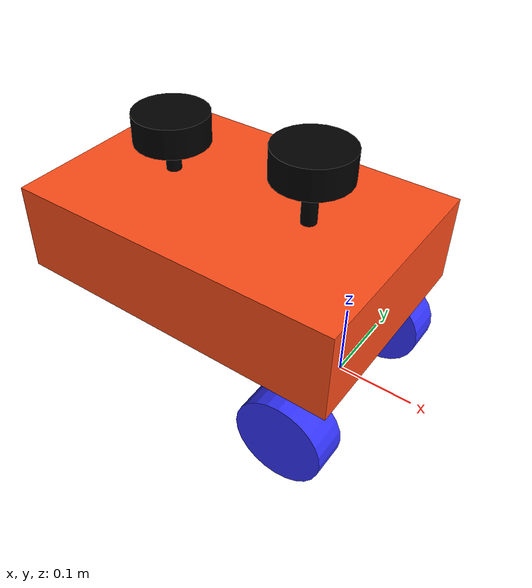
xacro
<?xml version="1.0"?>
<robot xmlns:xacro="http://www.ros.org/wiki/xacro"  name="robot">

    <xacro:arg name="use_ros2_control" default="true"/>
    <xacro:arg name="sim_mode" default="false"/>

    <xacro:include filename="robot_core1.xacro" />

    <xacro:if value="$(arg use_ros2_control)">
        <xacro:include filename="ros2_control.xacro" />
    </xacro:if>
    <xacro:unless value="$(arg use_ros2_control)">
        <xacro:include filename="gazebo_control.xacro" />
    </xacro:unless>
    <xacro:include filename="lidar.xacro" />
    <xacro:include filename="gps.xacro" />
    <xacro:include filename="imu.xacro" />

</robot>

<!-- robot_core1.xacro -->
<robot xmlns:xacro="http://www.ros.org/wiki/xacro" >

    <xacro:include filename="inertial_macros.xacro"/>

    <xacro:property name="chassis_length" value="0.449"/>
    <xacro:property name="chassis_width" value="0.299"/>
    <xacro:property name="chassis_height" value="0.120"/>
    <xacro:property name="chassis_mass" value="5.0"/>
    <xacro:property name="wheel_radius" value="0.0585"/>
    <xacro:property name="wheel_thickness" value="0.0477"/>
    <xacro:property name="wheel_mass" value="0.05"/>
    <xacro:property name="wheel_offset_x" value="0.390"/>
    <xacro:property name="wheel_offset_y" value="0.125"/>
    <xacro:property name="wheel_offset_z" value="-0.085"/>
    <xacro:property name="caster_wheel_radius" value="0.02"/>
    <xacro:property name="caster_wheel_mass" value="0.1"/>
    <xacro:property name="caster_wheel_offset_x" value="0.05"/>
    <xacro:property name="caster_wheel_offset_z" value="${wheel_offset_z - wheel_radius + caster_wheel_radius}"/>

    <material name="white">
        <color rgba="1 1 1 1" />
    </material>

    <material name="orange">
        <color rgba="1 0.3 0.1 1"/>
    </material>

    <material name="blue">
        <color rgba="0.2 0.2 1 1"/>
    </material>

    <material name="black">
        <color rgba="0 0 0 1"/>
    </material>

    <material name="red">
        <color rgba="1 0 0 1"/>
    </material>

    <!-- BASE FOOTPRINT -->

    <!-- BASE_LINK -->

    <!-- CHASSIS LINK -->
    <!-- BASE LINK -->

    <link name="base_link">

    </link>

    <!-- BASE_FOOTPRINT LINK -->

    <joint name="base_footprint_joint" type="fixed">
        <parent link="base_link"/>
        <child link="base_footprint"/>
        <origin xyz="0 0 0" rpy="0 0 0"/>
    </joint>

    <link name="base_footprint">
    </link>

    <joint name="chassis_joint" type="fixed">
        <parent link="base_link"/>
        <child link="chassis"/>
        <origin xyz="${-wheel_offset_x} 0 ${-wheel_offset_z}"/>
    </joint>

    <link name="chassis">
        <visual>
            <origin xyz="${chassis_length/2} 0 ${chassis_height/2}"/>
            <geometry>
                <box size="${chassis_length} ${chassis_width} ${chassis_height}"/>
            </geometry>
            <material name="orange"/>
        </visual>
        <collision>
            <origin xyz="${chassis_length/2} 0 ${chassis_height/2}"/>
            <geometry>
                <box size="${chassis_length} ${chassis_width} ${chassis_height}"/>
            </geometry>
        </collision>
        <xacro:inertial_box mass="0.5" x="${chassis_length}" y="${chassis_width}" z="${chassis_height}">
            <origin xyz="${chassis_length/2} 0 ${chassis_height/2}" rpy="0 0 0"/>
        </xacro:inertial_box>
    </link>

    <gazebo reference="chassis">
        <material>Gazebo/Orange</material>
    </gazebo>

    <!-- LEFT WHEEL LINK -->

    <joint name="left_wheel_joint" type="continuous">
        <parent link="base_link"/>
        <child link="left_wheel"/>
        <origin xyz="0 ${wheel_offset_y} 0" rpy="-${pi/2} 0 0" />
        <axis xyz="0 0 1"/>
    </joint>

    <link name="left_wheel">
        <visual>
            <geometry>
                <cylinder radius="${wheel_radius}" length="${wheel_thickness}"/>
            </geometry>
            <material name="blue"/>
        </visual>
        <collision>
            <geometry>
                <sphere radius="${wheel_radius}"/>
            </geometry>
        </collision>
        <xacro:inertial_cylinder mass="${wheel_mass}" length="${wheel_thickness}" radius="${wheel_radius}">
            <origin xyz="0 0 0" rpy="0 0 0"/>
        </xacro:inertial_cylinder>
    </link>

    <gazebo reference="left_wheel">
        <material>Gazebo/Blue</material>
    </gazebo>

    <!-- RIGHT WHEEL LINK -->

    <joint name="right_wheel_joint" type="continuous">
        <parent link="base_link"/>
        <child link="right_wheel"/>
        <origin xyz="0 ${-wheel_offset_y} 0" rpy="${pi/2} 0 0" />
        <axis xyz="0 0 -1"/>
    </joint>

    <link name="right_wheel">
        <visual>
            <geometry>
                <cylinder radius="${wheel_radius}" length="${wheel_thickness}"/>
            </geometry>
            <material name="blue"/>
        </visual>
        <collision>
            <geometry>
                <sphere radius="${wheel_radius}"/>
            </geometry>
        </collision>
        <xacro:inertial_cylinder mass="${wheel_mass}" length="${wheel_thickness}" radius="${wheel_radius}">
            <origin xyz="0 0 0" rpy="0 0 0"/>
        </xacro:inertial_cylinder>
    </link>

    <gazebo reference="right_wheel">
        <material>Gazebo/Blue</material>
    </gazebo>

    <!-- CASTER WHEEL LINK -->

    <joint name="caster_wheel_joint" type="fixed">
        <parent link="chassis"/>
        <child link="caster_wheel"/>
        <origin xyz="${caster_wheel_offset_x} 0 ${caster_wheel_offset_z}"/>
    </joint>

    <link name="caster_wheel">
        <visual>
            <geometry>
                <sphere radius="${caster_wheel_radius}"/>
            </geometry>
            <material name="white"/>
        </visual>
        <collision>
            <geometry>
                <sphere radius="${caster_wheel_radius}"/>
            </geometry>
        </collision>
        <xacro:inertial_sphere mass="${caster_wheel_mass}" radius="${caster_wheel_radius}">
            <origin xyz="0 0 0" rpy="0 0 0"/>
        </xacro:inertial_sphere>
    </link>

    <gazebo reference="caster_wheel">
        <material>Gazebo/White</material>
        <mu1 value="0.001"/>
        <mu2 value="0.001"/>
    </gazebo>

</robot>

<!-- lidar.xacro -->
<robot xmlns:xacro="http://www.ros.org/wiki/xacro" >

    <joint name="laser_joint" type="fixed">
        <parent link="chassis"/>
        <child link="laser_frame"/>
        <origin xyz="0.326 0 0.200" rpy="0 0 0"/>
    </joint>

    <link name="laser_frame">
        <visual>
            <geometry>
                <cylinder radius="0.05" length="0.04"/>
            </geometry>
            <material name="black"/>
        </visual>
        <visual>
            <origin xyz="0 0 -0.05"/>
            <geometry>
                <cylinder radius="0.01" length="0.1"/>
            </geometry>
            <material name="black"/>
        </visual>
        <collision>
            <geometry>
                <cylinder radius="0.05" length="0.04"/>
            </geometry>
        </collision>
        <xacro:inertial_cylinder mass="0.1" length="0.04" radius="0.05">
            <origin xyz="0 0 0" rpy="0 0 0"/>
        </xacro:inertial_cylinder>
    </link>

    <gazebo reference="laser_frame">
        <material>Gazebo/Black</material>

        <sensor name="laser" type="ray">
            <pose> 0 0 0 0 0 0 </pose>
            <visualize>false</visualize>
            <update_rate>10</update_rate>
            <ray>
                <scan>
                    <horizontal>
                        <samples>360</samples>
                        <min_angle>-3.14</min_angle>
                        <max_angle>3.14</max_angle>
                    </horizontal>
                </scan>
                <range>
                    <min>0.3</min>
                    <max>12</max>
                </range>
            </ray>
            <plugin name="laser_controller" filename="libgazebo_ros_ray_sensor.so">
                <ros>
                    <argument>~/out:=scan</argument>
                </ros>
                <output_type>sensor_msgs/LaserScan</output_type>
                <frame_name>laser_frame</frame_name>
            </plugin>
        </sensor>
    </gazebo>

</robot>

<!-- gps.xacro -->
<robot xmlns:xacro="http://www.ros.org/wiki/xacro" >

    <joint name="gps_joint" type="fixed">
        <parent link="chassis"/>
        <child link="gps_frame"/>
        <origin xyz="0.122 0 0.180" rpy="0 0 0"/>
    </joint>

    <link name="gps_frame">
        <visual>
            <geometry>
                <cylinder radius="0.05" length="0.04"/>
            </geometry>
            <material name="black"/>
        </visual>
        <visual>
            <origin xyz="0 0 -0.05"/>
            <geometry>
                <cylinder radius="0.01" length="0.1"/>
            </geometry>
            <material name="black"/>
        </visual>
        <collision>
            <geometry>
                <cylinder radius="0.05" length="0.04"/>
            </geometry>
        </collision>
        <xacro:inertial_cylinder mass="0.1" length="0.04" radius="0.05">
            <origin xyz="0 0 0" rpy="0 0 0"/>
        </xacro:inertial_cylinder>
    </link>

    <gazebo reference="gps_frame">
        <material>Gazebo/Black</material>

        <sensor name="tb3_gps" type="gps">
          <always_on>true</always_on>
          <update_rate>1</update_rate>
          <pose>0 0 0 0 0 0</pose>
          <gps>
            <position_sensing>
              <horizontal>
                <noise type="gaussian">
                  <mean>0.0</mean>
                  <stddev>0.001</stddev>
                </noise>
              </horizontal>
              <vertical>
                <noise type="gaussian">
                  <mean>0.0</mean>
                  <stddev>0.001</stddev>
                </noise>
              </vertical>
            </position_sensing>
          </gps>
          <plugin name="my_gps_plugin" filename="libgazebo_ros_gps_sensor.so">
            <ros>
              <remapping>~/out:=/gps/fix</remapping>
            </ros>
          </plugin>
        </sensor>
    </gazebo>

</robot>

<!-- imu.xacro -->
<robot xmlns:xacro="http://www.ros.org/wiki/xacro" >

    <joint name="imu_joint" type="fixed">
        <parent link="chassis"/>
        <child link="imu_frame"/>
        <origin xyz="0.122 0 0.180" rpy="0 0 0"/>
    </joint>

    <link name="imu_frame">
        <visual>
            <geometry>
                <cylinder radius="0.05" length="0.04"/>
            </geometry>
            <material name="black"/>
        </visual>
        <visual>
            <origin xyz="0 0 -0.05"/>
            <geometry>
                <cylinder radius="0.01" length="0.1"/>
            </geometry>
            <material name="black"/>
        </visual>
        <collision>
            <geometry>
                <cylinder radius="0.05" length="0.04"/>
            </geometry>
        </collision>
        <xacro:inertial_cylinder mass="0.1" length="0.04" radius="0.05">
            <origin xyz="0 0 0" rpy="0 0 0"/>
        </xacro:inertial_cylinder>
    </link>

    <gazebo reference="imu_frame">
        <material>Gazebo/Black</material>

        <sensor name="tb3_imu" type="imu">
          <always_on>true</always_on>
          <update_rate>60</update_rate>
          <imu>
            <angular_velocity>
              <x>
                <noise type="gaussian">
                  <mean>0.0</mean>
                  <stddev>2e-20</stddev>
                </noise>
              </x>
              <y>
                <noise type="gaussian">
                  <mean>0.0</mean>
                  <stddev>2e-20</stddev>
                </noise>
              </y>
              <z>
                <noise type="gaussian">
                  <mean>0.0</mean>
                  <stddev>2e-20</stddev>
                </noise>
              </z>
            </angular_velocity>
            <linear_acceleration>
              <x>
                <noise type="gaussian">
                  <mean>0.0</mean>
                  <stddev>1.7e-20</stddev>
                </noise>
              </x>
              <y>
                <noise type="gaussian">
                  <mean>0.0</mean>
                  <stddev>1.7e-20</stddev>
                </noise>
              </y>
              <z>
                <noise type="gaussian">
                  <mean>0.0</mean>
                  <stddev>1.7e-20</stddev>
                </noise>
              </z>
            </linear_acceleration>
          </imu>
          <plugin name="turtlebot3_imu" filename="libgazebo_ros_imu_sensor.so">
            <initial_orientation_as_reference>false</initial_orientation_as_reference>
            <ros>
              <remapping>~/out:=imu</remapping>
              </ros>
          </plugin>
        </sensor>
    </gazebo>

</robot>
